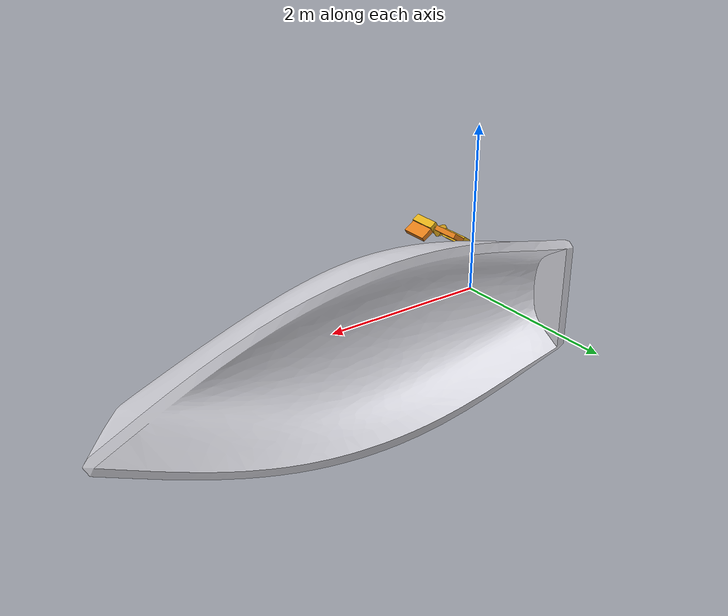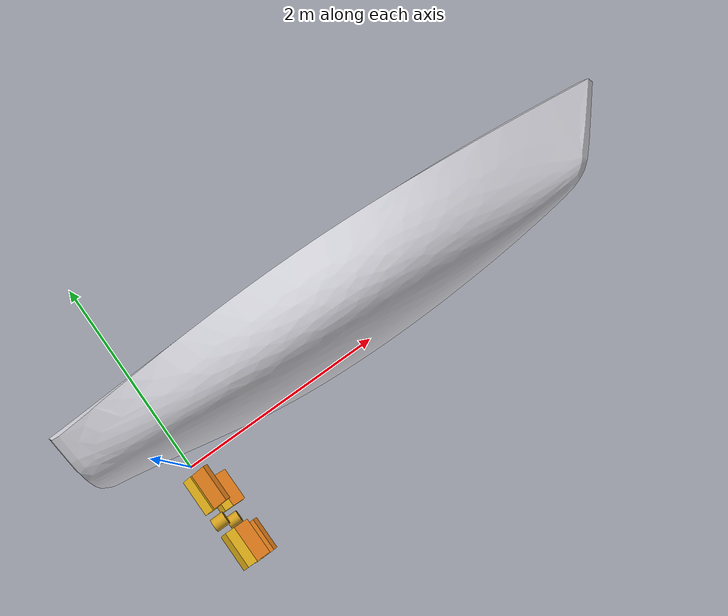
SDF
<?xml version="1.0" ?>
<sdf version="1.6">
  <world name="world">
    <model name="toy_boat">
      <pose>0 0 0 0 0 0</pose>

      <!-- ===================== HULL (base link) ====================== -->
      <link name="base_link">
        <pose>0 0 0 0 0 0</pose>
        <inertial>
          <pose>2.2206 0.3664 0 0 0 0</pose>
          <mass>1631.0</mass>
          <inertia>
            <ixx>789.0</ixx>  <ixy>0</ixy> <ixz>0</ixz>
            <iyy>5559.0</iyy> <iyz>0</iyz>
            <izz>5015.0</izz>
          </inertia>
        </inertial>
        <collision name="hull_collision">
          <pose>0 0 0 0 0 0</pose>
          <geometry><mesh><uri>../sdfs/DSYHS/OBJ/hull.obj</uri><scale>0.0026970 0.0026970 0.0026970</scale></mesh></geometry>
        </collision>
        <visual name="hull_visual">
          <pose>0 0 0 0 0 0</pose>
          <geometry><mesh><uri>../sdfs/DSYHS/OBJ/hull.obj</uri><scale>0.0026970 0.0026970 0.0026970</scale></mesh></geometry>
          <material><ambient>0.85 0.85 0.88 1</ambient><diffuse>0.85 0.85 0.88 1</diffuse></material>
        </visual>
      </link>

      <!-- ===================== KEEL (ballast) ======================== -->
      <link name="keel_link">
        <pose>0 0 0 0 0 0</pose>
        <inertial>
          <pose>-0.5 -0.80 0 0 0 0</pose>
          <mass>315.0</mass>
          <inertia>
            <ixx>9.9</ixx>  <ixy>0</ixy> <ixz>0</ixz>
            <iyy>52.2</iyy>  <iyz>0</iyz>
            <izz>60.6</izz>
          </inertia>
        </inertial>
        <collision name="keel_collision">
          <pose>0 0 0 0 0 0</pose>
          <geometry><mesh><uri>../sdfs/DSYHS/OBJ/keel.obj</uri><scale>0.0026970 0.0026970 0.0026970</scale></mesh></geometry>
        </collision>
        <visual name="keel_visual">
          <pose>0 0 0 0 0 0</pose>
          <geometry><mesh><uri>../sdfs/DSYHS/OBJ/keel.obj</uri><scale>0.0026970 0.0026970 0.0026970</scale></mesh></geometry>
          <material><ambient>0.6 0.6 0.62 1</ambient><diffuse>0.6 0.6 0.62 1</diffuse></material>
        </visual>
      </link>

      <!-- ===================== RUDDER ================================ -->
      <link name="rudder_link">
        <pose>0 0 0 0 0 0</pose>
        <inertial>
          <pose>-0.2113 0.0233 0 0 0 0</pose>
          <mass>20.0</mass>
          <inertia>
            <ixx>0.86</ixx>  <ixy>0</ixy> <ixz>0</ixz>
            <iyy>0.20</iyy>  <iyz>0</iyz>
            <izz>1.06</izz>
          </inertia>
        </inertial>
        <collision name="rudder_collision">
          <pose>0 0 0 0 0 0</pose>
          <geometry><mesh><uri>../sdfs/DSYHS/OBJ/rudder.obj</uri><scale>0.0026970 0.0026970 0.0026970</scale></mesh></geometry>
        </collision>
        <visual name="rudder_visual">
          <pose>0 0 0 0 0 0</pose>
          <geometry><mesh><uri>../sdfs/DSYHS/OBJ/rudder.obj</uri><scale>0.0026970 0.0026970 0.0026970</scale></mesh></geometry>
          <material><ambient>0.7 0.2 0.15 1</ambient><diffuse>0.7 0.2 0.15 1</diffuse></material>
        </visual>
      </link>

      <!-- Rigid welds attaching keel + rudder to the hull -->
      <joint name="joint_keel" type="fixed">
        <parent>base_link</parent><child>keel_link</child><pose>0 0 0 0 0 0</pose>
      </joint>
      <joint name="joint_rudder" type="fixed">
        <parent>base_link</parent><child>rudder_link</child><pose>0 0 0 0 0 0</pose>
      </joint>

      <!-- S propeller: hub z=+0.55, mirrored pitch x+1;
           counter-rotation via joint axis (1 0 0) with the same tau. -->
      <link name="propeller_hub_s">
        <pose>0.0 -0.58 0.55 0 0 0</pose>
        <inertial><pose>0 0 0 0 0 0</pose><mass>13.572</mass>
          <inertia><ixx>0.02443</ixx><ixy>0</ixy><ixz>0</ixz><iyy>0.02851</iyy><iyz>0</iyz><izz>0.02851</izz></inertia></inertial>
        <collision name="propeller_hub_s_collision"><pose>0 0 0 0 1.5707963267948966 0</pose>
          <geometry><cylinder><radius>0.06</radius><length>0.12</length></cylinder></geometry></collision>
        <visual name="propeller_hub_s_visual"><pose>0 0 0 0 1.5707963267948966 0</pose>
          <geometry><cylinder><radius>0.06</radius><length>0.12</length></cylinder></geometry>
          <material><ambient>0.8 0.6 0.1 1</ambient><diffuse>0.8 0.6 0.1 1</diffuse></material></visual>
      </link>
      <link name="blade_s0">
        <pose>0.0 -0.86 0.55 0 0.6 0</pose>
        <inertial><pose>0 0 0 0 0 0</pose><mass>12.0</mass>
          <inertia><ixx>0.12560</ixx><ixy>0</ixy><ixz>0</ixz><iyy>0.02000</iyy><iyz>0</iyz><izz>0.12560</izz></inertia></inertial>
        <collision name="blade_s0_collision"><pose>0 0 0 0 0 0</pose>
          <geometry><box><size>0.10 0.34 0.10</size></box></geometry></collision>
        <visual name="blade_s0_visual"><pose>0 0 0 0 0 0</pose>
          <geometry><box><size>0.10 0.34 0.10</size></box></geometry>
          <material><ambient>0.9 0.7 0.1 1</ambient><diffuse>0.9 0.7 0.1 1</diffuse></material></visual>
      </link>
      <link name="blade_s0_rib">
        <pose>0.10729 -0.86 0.47660 0 0.6 0</pose>
        <inertial><pose>0 0 0 0 0 0</pose><mass>3.0</mass>
          <inertia><ixx>0.02980</ixx><ixy>0</ixy><ixz>0</ixz><iyy>0.00730</iyy><iyz>0</iyz><izz>0.03530</izz></inertia></inertial>
        <collision name="blade_s0_rib_collision"><pose>0 0 0 0 0 0</pose>
          <geometry><box><size>0.16 0.34 0.06</size></box></geometry></collision>
        <visual name="blade_s0_rib_visual"><pose>0 0 0 0 0 0</pose>
          <geometry><box><size>0.16 0.34 0.06</size></box></geometry>
          <material><ambient>0.9 0.5 0.1 1</ambient><diffuse>0.9 0.5 0.1 1</diffuse></material></visual>
      </link>
      <link name="blade_s1">
        <pose>0.0 -0.3 0.55 0 -0.6 0</pose>
        <inertial><pose>0 0 0 0 0 0</pose><mass>12.0</mass>
          <inertia><ixx>0.12560</ixx><ixy>0</ixy><ixz>0</ixz><iyy>0.02000</iyy><iyz>0</iyz><izz>0.12560</izz></inertia></inertial>
        <collision name="blade_s1_collision"><pose>0 0 0 0 0 0</pose>
          <geometry><box><size>0.10 0.34 0.10</size></box></geometry></collision>
        <visual name="blade_s1_visual"><pose>0 0 0 0 0 0</pose>
          <geometry><box><size>0.10 0.34 0.10</size></box></geometry>
          <material><ambient>0.9 0.7 0.1 1</ambient><diffuse>0.9 0.7 0.1 1</diffuse></material></visual>
      </link>
      <link name="blade_s1_rib">
        <pose>0.10729 -0.3 0.62340 0 -0.6 0</pose>
        <inertial><pose>0 0 0 0 0 0</pose><mass>3.0</mass>
          <inertia><ixx>0.02980</ixx><ixy>0</ixy><ixz>0</ixz><iyy>0.00730</iyy><iyz>0</iyz><izz>0.03530</izz></inertia></inertial>
        <collision name="blade_s1_rib_collision"><pose>0 0 0 0 0 0</pose>
          <geometry><box><size>0.16 0.34 0.06</size></box></geometry></collision>
        <visual name="blade_s1_rib_visual"><pose>0 0 0 0 0 0</pose>
          <geometry><box><size>0.16 0.34 0.06</size></box></geometry>
          <material><ambient>0.9 0.5 0.1 1</ambient><diffuse>0.9 0.5 0.1 1</diffuse></material></visual>
      </link>
      <!-- P propeller: hub z=-0.55, mirrored pitch x-1;
           counter-rotation via joint axis (-1 0 0) with the same tau. -->
      <link name="propeller_hub_p">
        <pose>0.0 -0.58 -0.55 0 0 0</pose>
        <inertial><pose>0 0 0 0 0 0</pose><mass>13.572</mass>
          <inertia><ixx>0.02443</ixx><ixy>0</ixy><ixz>0</ixz><iyy>0.02851</iyy><iyz>0</iyz><izz>0.02851</izz></inertia></inertial>
        <collision name="propeller_hub_p_collision"><pose>0 0 0 0 1.5707963267948966 0</pose>
          <geometry><cylinder><radius>0.06</radius><length>0.12</length></cylinder></geometry></collision>
        <visual name="propeller_hub_p_visual"><pose>0 0 0 0 1.5707963267948966 0</pose>
          <geometry><cylinder><radius>0.06</radius><length>0.12</length></cylinder></geometry>
          <material><ambient>0.8 0.6 0.1 1</ambient><diffuse>0.8 0.6 0.1 1</diffuse></material></visual>
      </link>
      <link name="blade_p0">
        <pose>0.0 -0.86 -0.55 0 -0.6 0</pose>
        <inertial><pose>0 0 0 0 0 0</pose><mass>12.0</mass>
          <inertia><ixx>0.12560</ixx><ixy>0</ixy><ixz>0</ixz><iyy>0.02000</iyy><iyz>0</iyz><izz>0.12560</izz></inertia></inertial>
        <collision name="blade_p0_collision"><pose>0 0 0 0 0 0</pose>
          <geometry><box><size>0.10 0.34 0.10</size></box></geometry></collision>
        <visual name="blade_p0_visual"><pose>0 0 0 0 0 0</pose>
          <geometry><box><size>0.10 0.34 0.10</size></box></geometry>
          <material><ambient>0.9 0.7 0.1 1</ambient><diffuse>0.9 0.7 0.1 1</diffuse></material></visual>
      </link>
      <link name="blade_p0_rib">
        <pose>0.10729 -0.86 -0.47660 0 -0.6 0</pose>
        <inertial><pose>0 0 0 0 0 0</pose><mass>3.0</mass>
          <inertia><ixx>0.02980</ixx><ixy>0</ixy><ixz>0</ixz><iyy>0.00730</iyy><iyz>0</iyz><izz>0.03530</izz></inertia></inertial>
        <collision name="blade_p0_rib_collision"><pose>0 0 0 0 0 0</pose>
          <geometry><box><size>0.16 0.34 0.06</size></box></geometry></collision>
        <visual name="blade_p0_rib_visual"><pose>0 0 0 0 0 0</pose>
          <geometry><box><size>0.16 0.34 0.06</size></box></geometry>
          <material><ambient>0.9 0.5 0.1 1</ambient><diffuse>0.9 0.5 0.1 1</diffuse></material></visual>
      </link>
      <link name="blade_p1">
        <pose>0.0 -0.3 -0.55 0 0.6 0</pose>
        <inertial><pose>0 0 0 0 0 0</pose><mass>12.0</mass>
          <inertia><ixx>0.12560</ixx><ixy>0</ixy><ixz>0</ixz><iyy>0.02000</iyy><iyz>0</iyz><izz>0.12560</izz></inertia></inertial>
        <collision name="blade_p1_collision"><pose>0 0 0 0 0 0</pose>
          <geometry><box><size>0.10 0.34 0.10</size></box></geometry></collision>
        <visual name="blade_p1_visual"><pose>0 0 0 0 0 0</pose>
          <geometry><box><size>0.10 0.34 0.10</size></box></geometry>
          <material><ambient>0.9 0.7 0.1 1</ambient><diffuse>0.9 0.7 0.1 1</diffuse></material></visual>
      </link>
      <link name="blade_p1_rib">
        <pose>0.10729 -0.3 -0.62340 0 0.6 0</pose>
        <inertial><pose>0 0 0 0 0 0</pose><mass>3.0</mass>
          <inertia><ixx>0.02980</ixx><ixy>0</ixy><ixz>0</ixz><iyy>0.00730</iyy><iyz>0</iyz><izz>0.03530</izz></inertia></inertial>
        <collision name="blade_p1_rib_collision"><pose>0 0 0 0 0 0</pose>
          <geometry><box><size>0.16 0.34 0.06</size></box></geometry></collision>
        <visual name="blade_p1_rib_visual"><pose>0 0 0 0 0 0</pose>
          <geometry><box><size>0.16 0.34 0.06</size></box></geometry>
          <material><ambient>0.9 0.5 0.1 1</ambient><diffuse>0.9 0.5 0.1 1</diffuse></material></visual>
      </link>

      <joint name="joint_propeller_s" type="revolute">
        <parent>base_link</parent><child>propeller_hub_s</child><pose>0 0 0 0 0 0</pose>
        <axis><xyz>1 0 0</xyz><limit><lower>-1e16</lower><upper>1e16</upper></limit></axis>
      </joint>
      <joint name="joint_blade_s0" type="fixed"><parent>propeller_hub_s</parent><child>blade_s0</child><pose>0 0 0 0 0 0</pose></joint>
      <joint name="joint_blade_s0_rib" type="fixed"><parent>blade_s0</parent><child>blade_s0_rib</child><pose>0 0 0 0 0 0</pose></joint>
      <joint name="joint_blade_s1" type="fixed"><parent>propeller_hub_s</parent><child>blade_s1</child><pose>0 0 0 0 0 0</pose></joint>
      <joint name="joint_blade_s1_rib" type="fixed"><parent>blade_s1</parent><child>blade_s1_rib</child><pose>0 0 0 0 0 0</pose></joint>
      <joint name="joint_propeller_p" type="revolute">
        <parent>base_link</parent><child>propeller_hub_p</child><pose>0 0 0 0 0 0</pose>
        <axis><xyz>-1 0 0</xyz><limit><lower>-1e16</lower><upper>1e16</upper></limit></axis>
      </joint>
      <joint name="joint_blade_p0" type="fixed"><parent>propeller_hub_p</parent><child>blade_p0</child><pose>0 0 0 0 0 0</pose></joint>
      <joint name="joint_blade_p0_rib" type="fixed"><parent>blade_p0</parent><child>blade_p0_rib</child><pose>0 0 0 0 0 0</pose></joint>
      <joint name="joint_blade_p1" type="fixed"><parent>propeller_hub_p</parent><child>blade_p1</child><pose>0 0 0 0 0 0</pose></joint>
      <joint name="joint_blade_p1_rib" type="fixed"><parent>blade_p1</parent><child>blade_p1_rib</child><pose>0 0 0 0 0 0</pose></joint>

    </model>
  </world>
</sdf>
